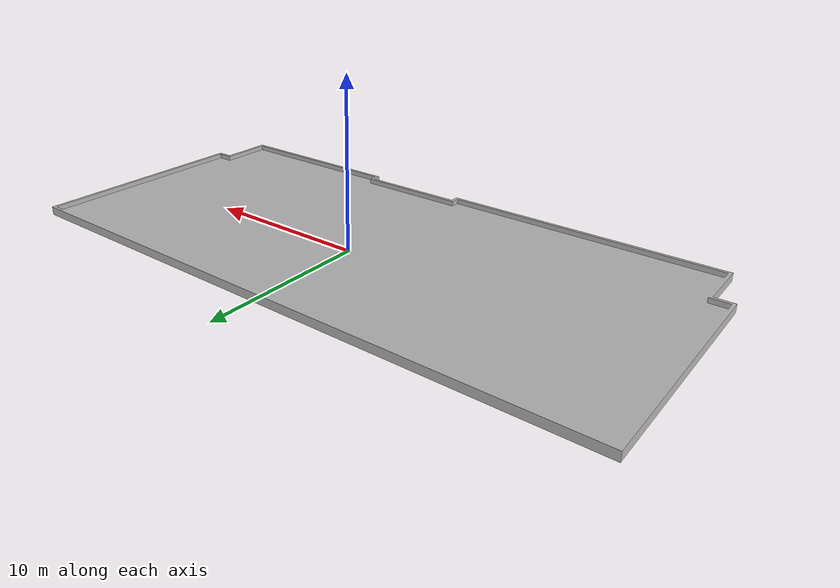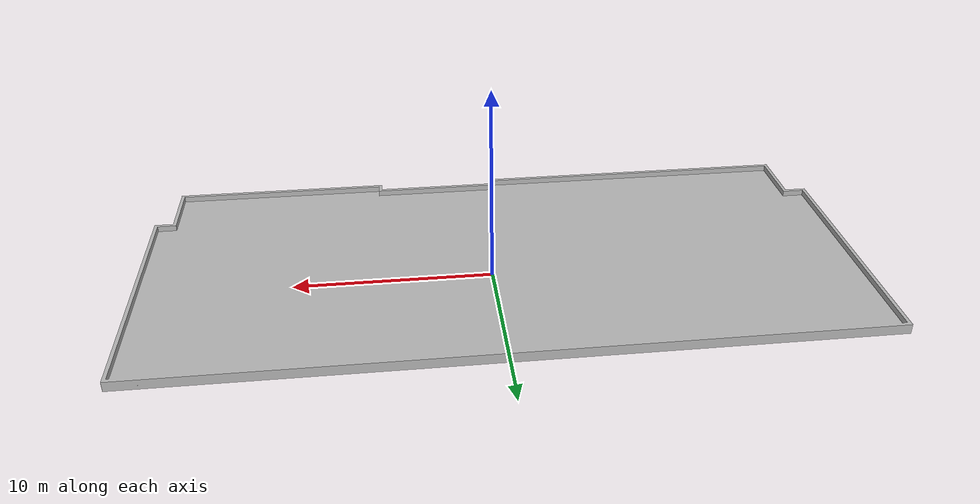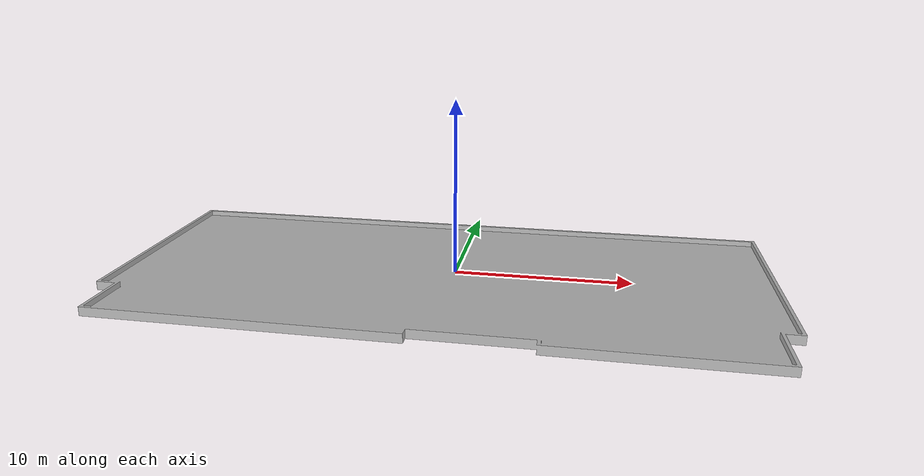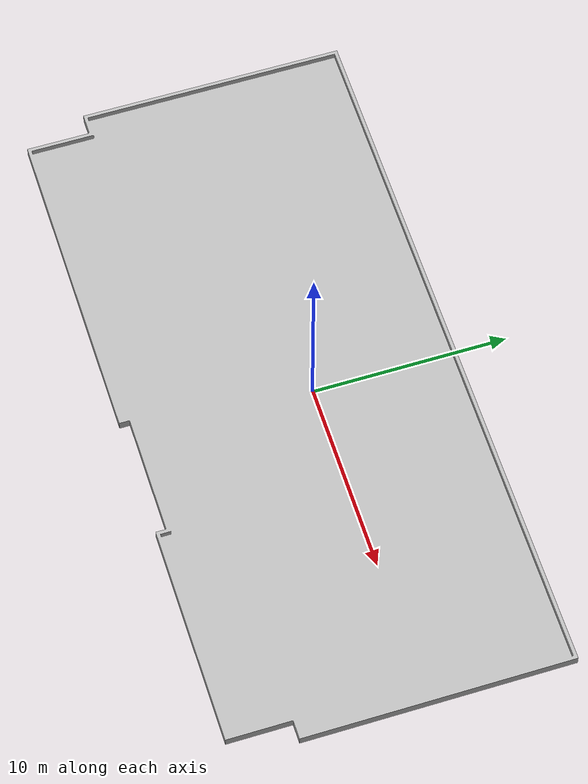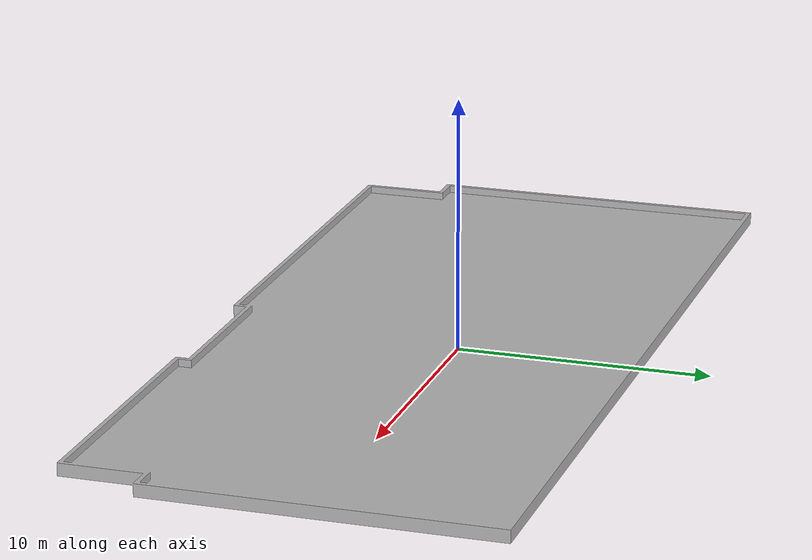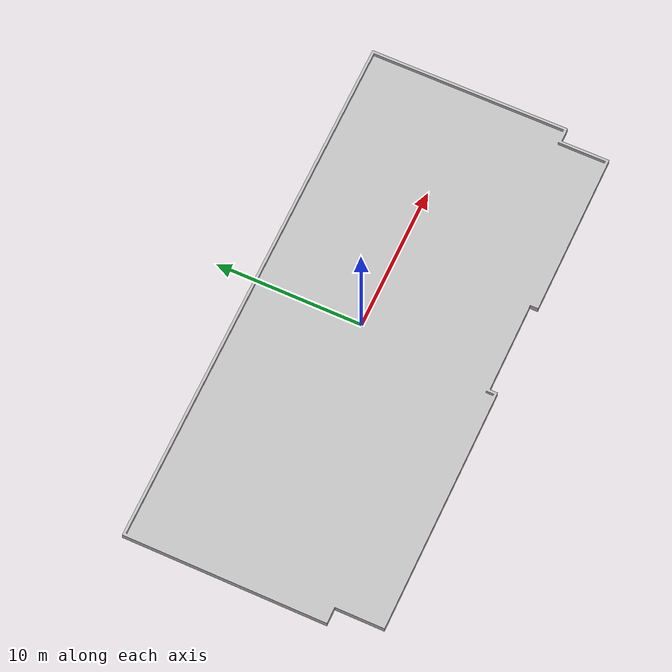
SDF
<?xml version="1.0" ?>
<sdf version="1.9">

  <model name="villa_Roof">

    <static>true</static>

    <link name="villa_Roof_link">

      <visual name="villa_Roof_visual">
        <geometry>
          <mesh>
            <uri>meshes/villa_Roof.obj</uri>
          </mesh>
        </geometry>
      </visual>

      <collision name="villa_Roof_collision">
        <geometry>
          <mesh>
            <uri>meshes/villa_Roof.obj</uri>
          </mesh>
        </geometry>
      </collision>

    </link>

  </model>

</sdf>
